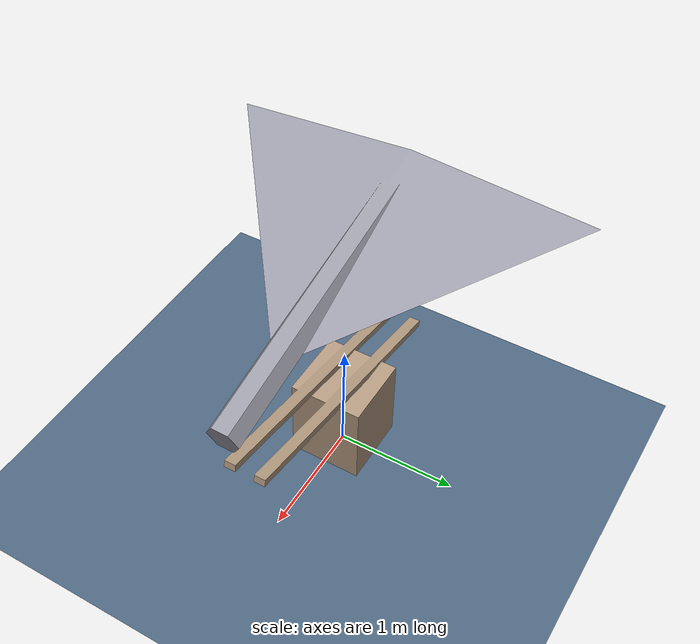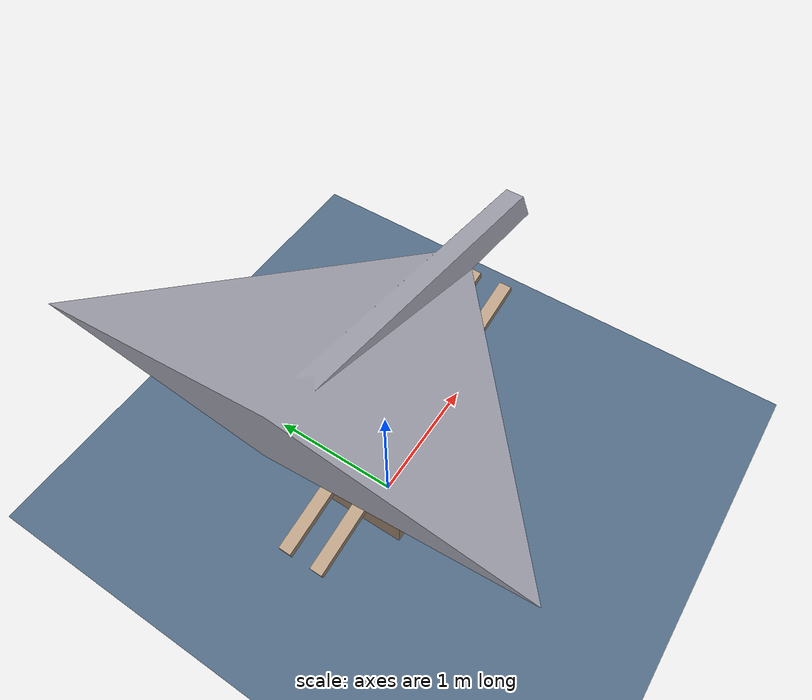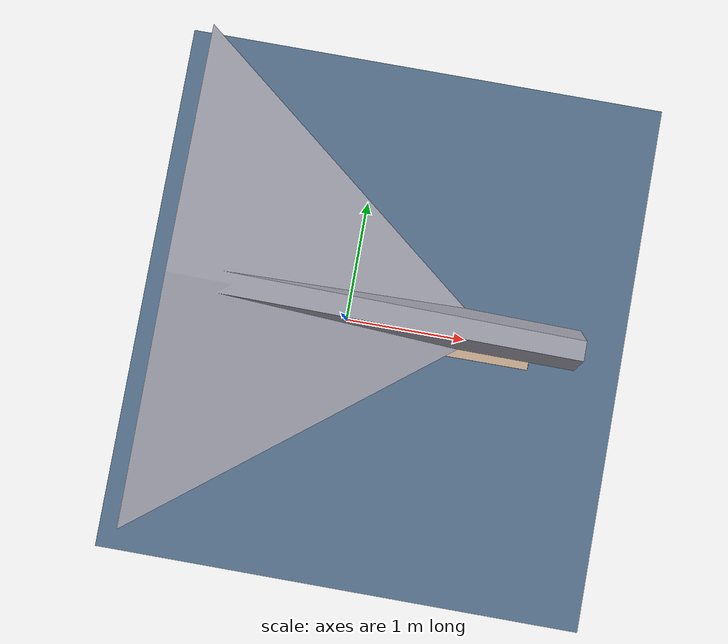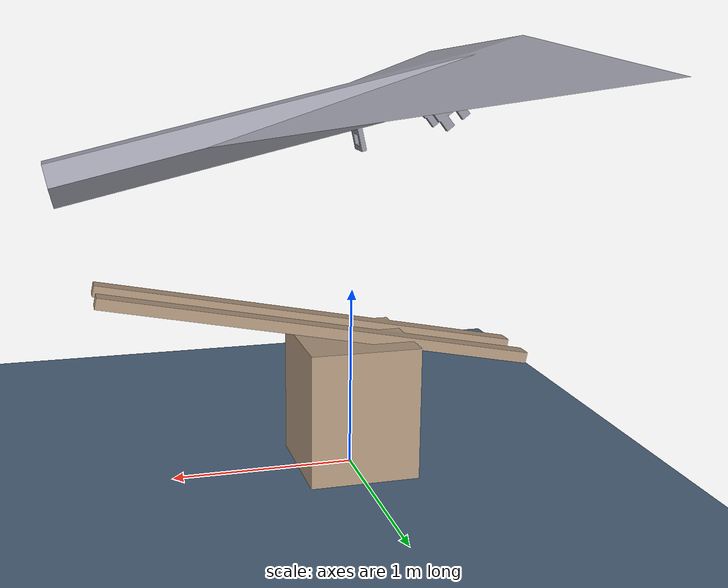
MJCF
<mujoco model="uav_aero">

  <!-- ==============================================
       Compiler & Options
       ============================================== -->
  <compiler angle="degree" eulerseq="xyz" meshdir="/home/heinz/isaaclab_uav/assets"/>

  <option timestep="0.005" gravity="0 0 -9.81"
          impratio="20" tolerance="1e-8" ls_tolerance="1e-8" noslip_tolerance="1e-8">
    <!-- Solver settings for better contact stability -->
    <flag contact="enable"/>
  </option>

  <!-- Soft contact parameters: prevent violent ground launch.
       The drone mesh extends ~0.6 m below the body origin when pitched,
       so lowering initial z below ~1.6 m causes ground penetration. -->
  <contact>
    <pair name="uav_ground" geom1="ground" geom2="uav_body"
          solref="0.01 0.9" solimp="0.95 0.99 0.001 0.5 2"
          condim="3" friction="0.5 0.3 0.1"/>
    <pair name="uav_rail" geom1="rail_geom" geom2="uav_body"
          solref="0.01 0.9" solimp="0.95 0.99 0.001 0.5 2"
          condim="3" friction="0.5 0.3 0.1"/>
  </contact>

  <visual>
    <map stiffness="1000" fogstart="10" fogend="50"/>
    <quality shadowsize="2048"/>
    <headlight diffuse="0.6 0.6 0.6" ambient="0.3 0.3 0.3"/>
  </visual>

  <!-- ==============================================
       Assets: Meshes
       ============================================== -->
  <asset>
    <!-- UAV collision/visual mesh -->
    <mesh name="uav_mesh" file="shahed-136/source/shahed_collision_2.stl"/>
    <!-- Rail collision object mesh -->
    <mesh name="rail_mesh" file="shahed-136/source/rail_collision.stl"/>
  </asset>

  <!-- ==============================================
       World Body
       ============================================== -->
  <worldbody>

    <!-- Ground plane (infinite flat plane at z=0) -->
    <geom name="ground" type="plane" size="50 50 0.1" pos="0 0 0" rgba="0.3 0.4 0.5 1"/>

    <!-- Lighting reference -->
    <light directional="true" diffuse="0.8 0.8 0.8" specular="0.2 0.2 0.2"
           pos="5 5 10" dir="-0.5 -0.5 -1"/>

    <body name="uav" pos="0 0 2.0" euler="0 12.8 0">
      <!-- 6-DoF free joint -->
      <joint name="uav_joint" type="free"/>

      <!-- Inertial properties: mass=200 kg, inertia from URDF -->
      <inertial pos="0 0 0" mass="200" diaginertia="40 40 20"/>

      <!-- Visual + collision geometry using STL mesh -->
      <geom name="uav_body" type="mesh" mesh="uav_mesh"
            rgba="0.6 0.6 0.65 1"/>

      <!-- Front marker: small sphere at nose to indicate heading -->
      <site name="uav_nose" pos="-0.8 0 0" size="0.02" rgba="1 0 0 1"/>
      <!-- COM marker -->
      <site name="uav_com" pos="0 0 0" size="0.03" rgba="0 1 0 1"/>
    </body>

    <!-- ==========================================
         Static Rail Object
         Position: (0, 0, 0), orientation: identity
         ========================================== -->
    <body name="rail" pos="0 0 0" quat="1 0 0 0">
      <!-- Fixed base -- no free joint = static -->
      <geom name="rail_geom" type="mesh" mesh="rail_mesh"
            rgba="0.7 0.6 0.5 1"/>
    </body>

  </worldbody>

  <!-- ==============================================
       Sensors
       ============================================== -->
  <sensor>
    <!-- Body linear velocity in world frame -->
    <framelinvel name="uav_vel" objtype="body" objname="uav"/>
    <!-- Body angular velocity -->
    <framelinvel name="uav_angvel" objtype="body" objname="uav"/>
  </sensor>

</mujoco>
